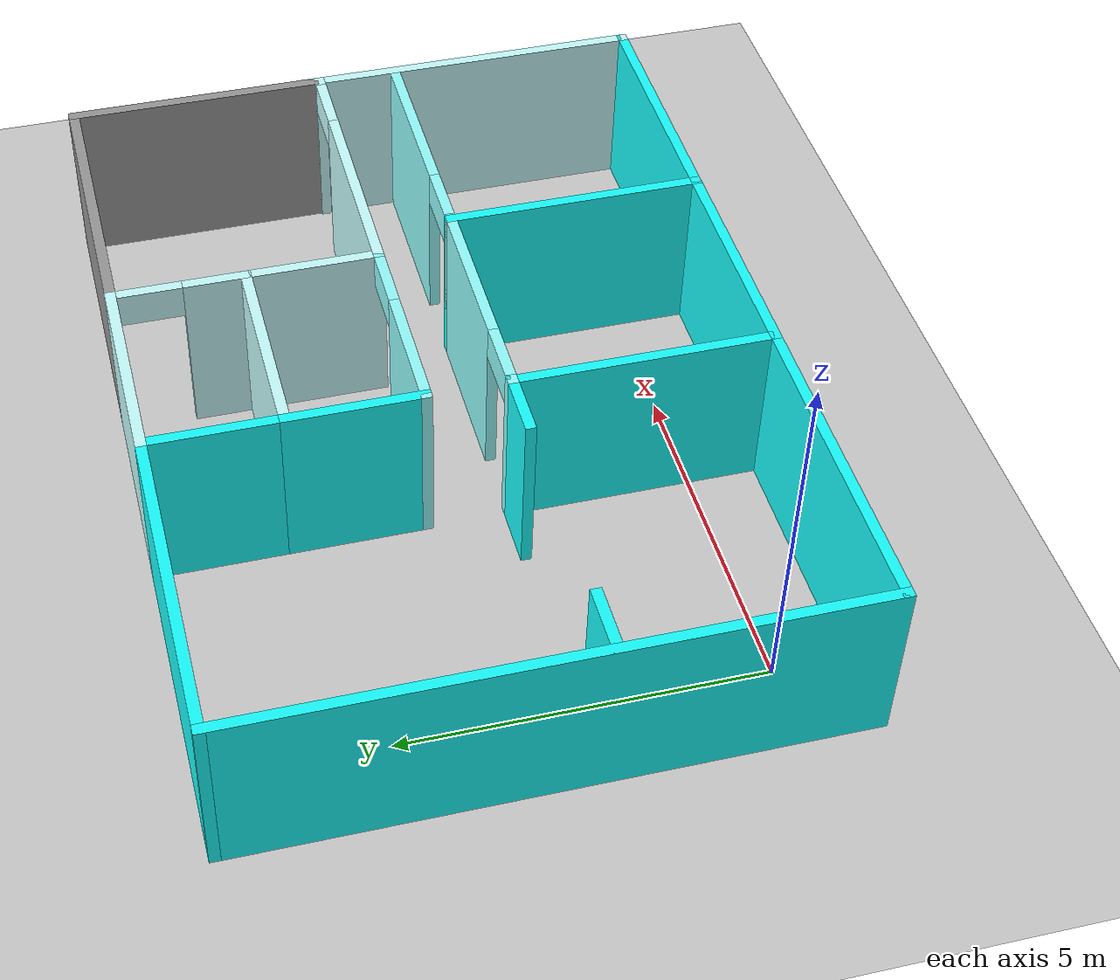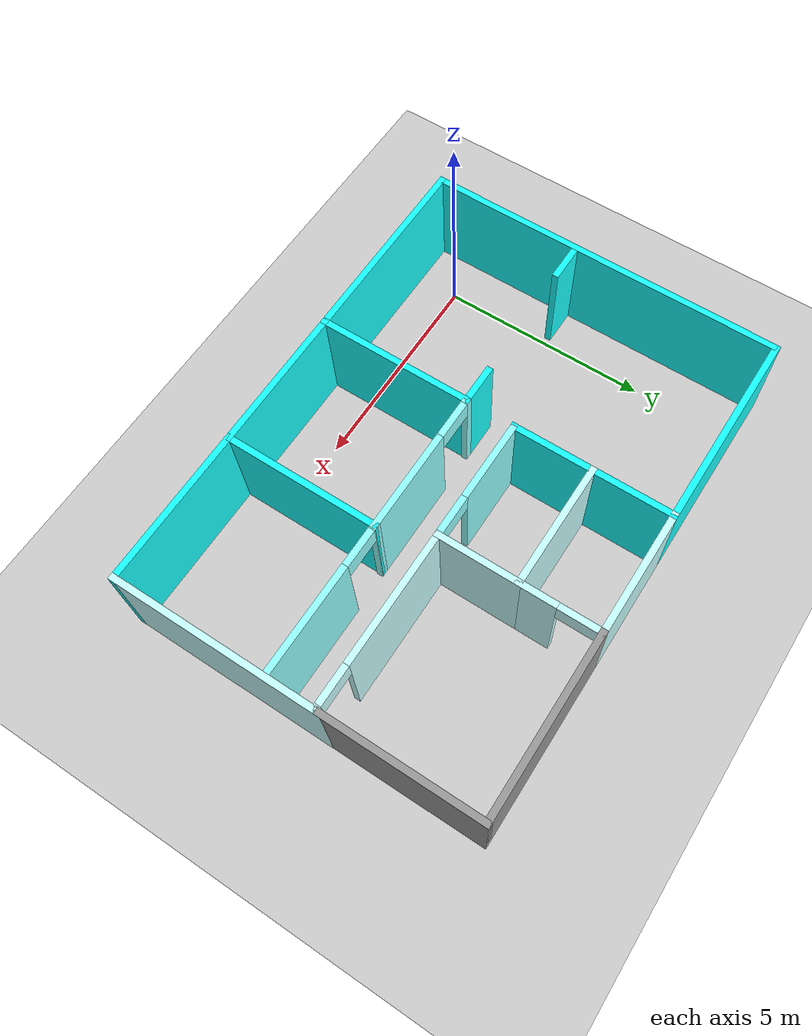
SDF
<sdf version="1.6">
 <world name="default">
  <light name="sun" type="directional">
   <pose>0 0 10 0 -0 0</pose>
   <diffuse>0.8 0.8 0.8 1</diffuse>
   <specular>0.2 0.2 0.2 1</specular>
   <attenuation>
    <range>1000</range>
    <constant>0.9</constant>
    <linear>0.01</linear>
    <quadratic>0.001</quadratic>
   </attenuation>
   <direction>-0.5 0.1 -0.9</direction>
  </light>
  <model name="ground_plane">
   <static>1</static>
   <link name="link">
    <collision name="collision">
     <geometry><plane><normal>0 0 1</normal><size>100 100</size></plane></geometry>
     <surface>
      <contact><collide_bitmask>65535</collide_bitmask></contact>
      <friction><ode><mu>100</mu><mu2>50</mu2></ode></friction>
     </surface>
    </collision>
    <visual name="visual">
     <cast_shadows>0</cast_shadows>
     <geometry><plane><normal>0 0 1</normal><size>100 100</size></plane></geometry>
     <material>
      <script><uri>file://media/materials/scripts/gazebo.material</uri><name>Gazebo/Grey</name></script>
     </material>
    </visual>
   </link>
  </model>
  <gravity>0 0 -9.8</gravity>
  <magnetic_field>6e-06 2.3e-05 -4.2e-05</magnetic_field>
  <atmosphere type="adiabatic"/>
  <physics name="default_physics" default="0" type="ode">
   <max_step_size>0.001</max_step_size>
   <real_time_factor>1</real_time_factor>
   <real_time_update_rate>1000</real_time_update_rate>
  </physics>
  <scene><ambient>0.4 0.4 0.4 1</ambient><background>0.7 0.7 0.7 1</background><shadows>1</shadows></scene>
  <audio><device>default</device></audio>
  <spherical_coordinates>
   <surface_model>EARTH_WGS84</surface_model>
   <latitude_deg>0</latitude_deg>
   <longitude_deg>0</longitude_deg>
   <elevation>0</elevation>
   <heading_deg>0</heading_deg>
  </spherical_coordinates>
  <model name="blue_model">
   <pose>4.70028 3.18778 0 0 -0 0</pose>
   <link name="Wall_0">
    <collision name="Wall_0_Collision">
     <geometry><box><size>4.75 0.15 2.5</size></box></geometry>
     <pose>0 0 1.25 0 -0 0</pose>
    </collision>
    <visual name="Wall_0_Visual">
     <pose>0 0 1.25 0 -0 0</pose>
     <geometry><box><size>4.75 0.15 2.5</size></box></geometry>
     <material>
      <script><uri>file://media/materials/scripts/gazebo.material</uri><name>Gazebo/Grey</name></script>
      <ambient>0.0980392 1 1 1</ambient>
     </material>
     <meta><layer>0</layer></meta>
    </visual>
    <pose>-3.475 4.225 0 0 -0 0</pose>
   </link>
   <link name="Wall_1">
    <collision name="Wall_1_Collision">
     <geometry><box><size>3 0.15 2.5</size></box></geometry>
     <pose>0 0 1.25 0 -0 0</pose>
    </collision>
    <visual name="Wall_1_Visual">
     <pose>0 0 1.25 0 -0 0</pose>
     <geometry><box><size>3 0.15 2.5</size></box></geometry>
     <material>
      <script><uri>file://media/materials/scripts/gazebo.material</uri><name>Gazebo/Grey</name></script>
      <ambient>0.784314 1 1 1</ambient>
     </material>
     <meta><layer>0</layer></meta>
    </visual>
    <pose>0.25 4.225 0 0 -0 0</pose>
   </link>
   <link name="Wall_10">
    <pose>0.5 -0.625 0 0 -0 3.14159</pose>
    <visual name="Wall_10_Visual_0">
     <pose>-0.5326 0 1.25 0 -0 0</pose>
     <geometry><box><size>2.4348 0.15 2.5</size></box></geometry>
     <material>
      <script><uri>file://media/materials/scripts/gazebo.material</uri><name>Gazebo/Grey</name></script>
      <ambient>0.588235 1 1 1</ambient>
     </material>
     <meta><layer>0</layer></meta>
    </visual>
    <collision name="Wall_10_Collision_0">
     <geometry><box><size>2.4348 0.15 2.5</size></box></geometry>
     <pose>-0.5326 0 1.25 0 -0 0</pose>
    </collision>
    <visual name="Wall_10_Visual_1">
     <pose>1.6674 0 1.25 0 -0 0</pose>
     <geometry><box><size>0.1652 0.15 2.5</size></box></geometry>
     <material>
      <script><uri>file://media/materials/scripts/gazebo.material</uri><name>Gazebo/Grey</name></script>
      <ambient>0.588235 1 1 1</ambient>
     </material>
     <meta><layer>0</layer></meta>
    </visual>
    <collision name="Wall_10_Collision_1">
     <geometry><box><size>0.1652 0.15 2.5</size></box></geometry>
     <pose>1.6674 0 1.25 0 -0 0</pose>
    </collision>
    <visual name="Wall_10_Visual_2">
     <pose>1.1348 0 2.25 0 -0 0</pose>
     <geometry><box><size>0.9 0.15 0.5</size></box></geometry>
     <material>
      <script><uri>file://media/materials/scripts/gazebo.material</uri><name>Gazebo/Grey</name></script>
      <ambient>0.588235 1 1 1</ambient>
     </material>
     <meta><layer>0</layer></meta>
    </visual>
    <collision name="Wall_10_Collision_2">
     <geometry><box><size>0.9 0.15 0.5</size></box></geometry>
     <pose>1.1348 0 2.25 0 -0 0</pose>
    </collision>
   </link>
   <link name="Wall_11">
    <collision name="Wall_11_Collision">
     <geometry><box><size>3.75 0.15 2.5</size></box></geometry>
     <pose>0 0 1.25 0 -0 0</pose>
    </collision>
    <visual name="Wall_11_Visual">
     <pose>0 0 1.25 0 -0 0</pose>
     <geometry><box><size>3.75 0.15 2.5</size></box></geometry>
     <material>
      <script><uri>file://media/materials/scripts/gazebo.material</uri><name>Gazebo/Grey</name></script>
      <ambient>0.0980392 1 1 1</ambient>
     </material>
     <meta><layer>0</layer></meta>
    </visual>
    <pose>-1.175 -2.425 0 0 -0 -1.5708</pose>
   </link>
   <link name="Wall_12">
    <collision name="Wall_12_Collision">
     <geometry><box><size>3.5 0.15 2.5</size></box></geometry>
     <pose>0 0 1.25 0 -0 0</pose>
    </collision>
    <visual name="Wall_12_Visual">
     <pose>0 0 1.25 0 -0 0</pose>
     <geometry><box><size>3.5 0.15 2.5</size></box></geometry>
     <material>
      <script><uri>file://media/materials/scripts/gazebo.material</uri><name>Gazebo/Grey</name></script>
      <ambient>0.0980392 1 1 1</ambient>
     </material>
     <meta><layer>0</layer></meta>
    </visual>
    <pose>0.5 -4.225 0 0 -0 0</pose>
   </link>
   <link name="Wall_16">
    <pose>1.675 3.3 0 0 -0 -1.5708</pose>
    <visual name="Wall_16_Visual_0">
     <pose>-0.924743 0 1.25 0 -0 0</pose>
     <geometry><box><size>0.150513 0.15 2.5</size></box></geometry>
     <material>
      <script><uri>file://media/materials/scripts/gazebo.material</uri><name>Gazebo/Grey</name></script>
      <ambient>0.784314 1 1 1</ambient>
     </material>
     <meta><layer>0</layer></meta>
    </visual>
    <collision name="Wall_16_Collision_0">
     <geometry><box><size>0.150513 0.15 2.5</size></box></geometry>
     <pose>-0.924743 0 1.25 0 -0 0</pose>
    </collision>
    <visual name="Wall_16_Visual_1">
     <pose>0.525257 0 1.25 0 -0 0</pose>
     <geometry><box><size>0.949487 0.15 2.5</size></box></geometry>
     <material>
      <script><uri>file://media/materials/scripts/gazebo.material</uri><name>Gazebo/Grey</name></script>
      <ambient>0.784314 1 1 1</ambient>
     </material>
     <meta><layer>0</layer></meta>
    </visual>
    <collision name="Wall_16_Collision_1">
     <geometry><box><size>0.949487 0.15 2.5</size></box></geometry>
     <pose>0.525257 0 1.25 0 -0 0</pose>
    </collision>
    <visual name="Wall_16_Visual_2">
     <pose>-0.399487 0 2.25 0 -0 0</pose>
     <geometry><box><size>0.9 0.15 0.5</size></box></geometry>
     <material>
      <script><uri>file://media/materials/scripts/gazebo.material</uri><name>Gazebo/Grey</name></script>
      <ambient>0.784314 1 1 1</ambient>
     </material>
     <meta><layer>0</layer></meta>
    </visual>
    <collision name="Wall_16_Collision_2">
     <geometry><box><size>0.9 0.15 0.5</size></box></geometry>
     <pose>-0.399487 0 2.25 0 -0 0</pose>
    </collision>
   </link>
   <link name="Wall_17">
    <collision name="Wall_17_Collision">
     <geometry><box><size>2 0.15 2.5</size></box></geometry>
     <pose>0 0 1.25 0 -0 0</pose>
    </collision>
    <visual name="Wall_17_Visual">
     <pose>0 0 1.25 0 -0 0</pose>
     <geometry><box><size>2 0.15 2.5</size></box></geometry>
     <material>
      <script><uri>file://media/materials/scripts/gazebo.material</uri><name>Gazebo/Grey</name></script>
      <ambient>0.784314 1 1 1</ambient>
     </material>
     <meta><layer>0</layer></meta>
    </visual>
    <pose>1.675 1.45 0 0 -0 -1.5708</pose>
   </link>
   <link name="Wall_2">
    <collision name="Wall_2_Collision">
     <geometry><box><size>4.25 0.15 2.5</size></box></geometry>
     <pose>0 0 1.25 0 -0 0</pose>
    </collision>
    <visual name="Wall_2_Visual">
     <pose>0 0 1.25 0 -0 0</pose>
     <geometry><box><size>4.25 0.15 2.5</size></box></geometry>
     <material>
      <script><uri>file://media/materials/scripts/gazebo.material</uri><name>Gazebo/Grey</name></script>
      <ambient>1 1 1 1</ambient>
     </material>
     <meta><layer>0</layer></meta>
    </visual>
    <pose>3.725 4.225 0 0 -0 0</pose>
   </link>
   <link name="Wall_20">
    <pose>0.25 0.525 0 0 -0 3.14159</pose>
    <visual name="Wall_20_Visual_0">
     <pose>-1.42623 0 1.25 0 -0 0</pose>
     <geometry><box><size>0.147542 0.15 2.5</size></box></geometry>
     <material>
      <script><uri>file://media/materials/scripts/gazebo.material</uri><name>Gazebo/Grey</name></script>
      <ambient>0.588235 1 1 1</ambient>
     </material>
     <meta><layer>0</layer></meta>
    </visual>
    <collision name="Wall_20_Collision_0">
     <geometry><box><size>0.147542 0.15 2.5</size></box></geometry>
     <pose>-1.42623 0 1.25 0 -0 0</pose>
    </collision>
    <visual name="Wall_20_Visual_1">
     <pose>0.523771 0 1.25 0 -0 0</pose>
     <geometry><box><size>1.95246 0.15 2.5</size></box></geometry>
     <material>
      <script><uri>file://media/materials/scripts/gazebo.material</uri><name>Gazebo/Grey</name></script>
      <ambient>0.588235 1 1 1</ambient>
     </material>
     <meta><layer>0</layer></meta>
    </visual>
    <collision name="Wall_20_Collision_1">
     <geometry><box><size>1.95246 0.15 2.5</size></box></geometry>
     <pose>0.523771 0 1.25 0 -0 0</pose>
    </collision>
    <visual name="Wall_20_Visual_2">
     <pose>-0.902458 0 2.25 0 -0 0</pose>
     <geometry><box><size>0.9 0.15 0.5</size></box></geometry>
     <material>
      <script><uri>file://media/materials/scripts/gazebo.material</uri><name>Gazebo/Grey</name></script>
      <ambient>0.588235 1 1 1</ambient>
     </material>
     <meta><layer>0</layer></meta>
    </visual>
    <collision name="Wall_20_Collision_2">
     <geometry><box><size>0.9 0.15 0.5</size></box></geometry>
     <pose>-0.902458 0 2.25 0 -0 0</pose>
    </collision>
   </link>
   <link name="Wall_22">
    <pose>3.725 0.525 0 0 -0 0</pose>
    <visual name="Wall_22_Visual_0">
     <pose>-0.539263 0 1.25 0 -0 0</pose>
     <geometry><box><size>3.17147 0.15 2.5</size></box></geometry>
     <material>
      <script><uri>file://media/materials/scripts/gazebo.material</uri><name>Gazebo/Grey</name></script>
      <ambient>0.784314 1 1 1</ambient>
     </material>
     <meta><layer>0</layer></meta>
    </visual>
    <collision name="Wall_22_Collision_0">
     <geometry><box><size>3.17147 0.15 2.5</size></box></geometry>
     <pose>-0.539263 0 1.25 0 -0 0</pose>
    </collision>
    <visual name="Wall_22_Visual_1">
     <pose>2.03574 0 1.25 0 -0 0</pose>
     <geometry><box><size>0.178527 0.15 2.5</size></box></geometry>
     <material>
      <script><uri>file://media/materials/scripts/gazebo.material</uri><name>Gazebo/Grey</name></script>
      <ambient>0.784314 1 1 1</ambient>
     </material>
     <meta><layer>0</layer></meta>
    </visual>
    <collision name="Wall_22_Collision_1">
     <geometry><box><size>0.178527 0.15 2.5</size></box></geometry>
     <pose>2.03574 0 1.25 0 -0 0</pose>
    </collision>
    <visual name="Wall_22_Visual_2">
     <pose>1.49647 0 2.25 0 -0 0</pose>
     <geometry><box><size>0.9 0.15 0.5</size></box></geometry>
     <material>
      <script><uri>file://media/materials/scripts/gazebo.material</uri><name>Gazebo/Grey</name></script>
      <ambient>0.784314 1 1 1</ambient>
     </material>
     <meta><layer>0</layer></meta>
    </visual>
    <collision name="Wall_22_Collision_2">
     <geometry><box><size>0.9 0.15 0.5</size></box></geometry>
     <pose>1.49647 0 2.25 0 -0 0</pose>
    </collision>
   </link>
   <link name="Wall_24">
    <collision name="Wall_24_Collision">
     <geometry><box><size>3 0.15 2.5</size></box></geometry>
     <pose>0 0 1.25 0 -0 0</pose>
    </collision>
    <visual name="Wall_24_Visual">
     <pose>0 0 1.25 0 -0 0</pose>
     <geometry><box><size>3 0.15 2.5</size></box></geometry>
     <material>
      <script><uri>file://media/materials/scripts/gazebo.material</uri><name>Gazebo/Grey</name></script>
      <ambient>0.784314 1 1 1</ambient>
     </material>
     <meta><layer>0</layer></meta>
    </visual>
    <pose>0.25 2.375 0 0 -0 3.14159</pose>
   </link>
   <link name="Wall_26">
    <collision name="Wall_26_Collision">
     <geometry><box><size>4.75 0.15 2.5</size></box></geometry>
     <pose>0 0 1.25 0 -0 0</pose>
    </collision>
    <visual name="Wall_26_Visual">
     <pose>0 0 1.25 0 -0 0</pose>
     <geometry><box><size>4.75 0.15 2.5</size></box></geometry>
     <material>
      <script><uri>file://media/materials/scripts/gazebo.material</uri><name>Gazebo/Grey</name></script>
      <ambient>0.0980392 1 1 1</ambient>
     </material>
     <meta><layer>0</layer></meta>
    </visual>
    <pose>-3.475 -4.225 0 0 -0 3.14159</pose>
   </link>
   <link name="Wall_28">
    <collision name="Wall_28_Collision">
     <geometry><box><size>8.6 0.15 2.5</size></box></geometry>
     <pose>0 0 1.25 0 -0 0</pose>
    </collision>
    <visual name="Wall_28_Visual">
     <pose>0 0 1.25 0 -0 0</pose>
     <geometry><box><size>8.6 0.15 2.5</size></box></geometry>
     <material>
      <script><uri>file://media/materials/scripts/gazebo.material</uri><name>Gazebo/Grey</name></script>
      <ambient>0.0980392 1 1 1</ambient>
     </material>
     <meta><layer>0</layer></meta>
    </visual>
    <pose>-5.775 0 0 0 -0 -1.5708</pose>
   </link>
   <link name="Wall_3">
    <collision name="Wall_3_Collision">
     <geometry><box><size>3.75 0.15 2.5</size></box></geometry>
     <pose>0 0 1.25 0 -0 0</pose>
    </collision>
    <visual name="Wall_3_Visual">
     <pose>0 0 1.25 0 -0 0</pose>
     <geometry><box><size>3.75 0.15 2.5</size></box></geometry>
     <material>
      <script><uri>file://media/materials/scripts/gazebo.material</uri><name>Gazebo/Grey</name></script>
      <ambient>1 1 1 1</ambient>
     </material>
     <meta><layer>0</layer></meta>
    </visual>
    <pose>5.775 2.425 0 0 -0 -1.5708</pose>
   </link>
   <link name="Wall_30">
    <collision name="Wall_30_Collision">
     <geometry><box><size>2 0.15 2.5</size></box></geometry>
     <pose>0 0 1.25 0 -0 0</pose>
    </collision>
    <visual name="Wall_30_Visual">
     <pose>0 0 1.25 0 -0 0</pose>
     <geometry><box><size>2 0.15 2.5</size></box></geometry>
     <material>
      <script><uri>file://media/materials/scripts/gazebo.material</uri><name>Gazebo/Grey</name></script>
      <ambient>0.0980392 1 1 1</ambient>
     </material>
     <meta><layer>0</layer></meta>
    </visual>
    <pose>-1.175 1.45 0 0 -0 1.5708</pose>
   </link>
   <link name="Wall_31">
    <collision name="Wall_31_Collision">
     <geometry><box><size>2 0.15 2.5</size></box></geometry>
     <pose>0 0 1.25 0 -0 0</pose>
    </collision>
    <visual name="Wall_31_Visual">
     <pose>0 0 1.25 0 -0 0</pose>
     <geometry><box><size>2 0.15 2.5</size></box></geometry>
     <material>
      <script><uri>file://media/materials/scripts/gazebo.material</uri><name>Gazebo/Grey</name></script>
      <ambient>0.0980392 1 1 1</ambient>
     </material>
     <meta><layer>0</layer></meta>
    </visual>
    <pose>-1.175 3.3 0 0 -0 1.5708</pose>
   </link>
   <link name="Wall_33">
    <collision name="Wall_33_Collision">
     <geometry><box><size>1 0.15 2.5</size></box></geometry>
     <pose>0 0 1.25 0 -0 0</pose>
    </collision>
    <visual name="Wall_33_Visual">
     <pose>0 0 1.25 0 -0 0</pose>
     <geometry><box><size>1 0.15 2.5</size></box></geometry>
     <material>
      <script><uri>file://media/materials/scripts/gazebo.material</uri><name>Gazebo/Grey</name></script>
      <ambient>0.0980392 1 1 1</ambient>
     </material>
     <meta><layer>0</layer></meta>
    </visual>
    <pose>-1.6 -0.625 0 0 -0 3.14159</pose>
   </link>
   <link name="Wall_35">
    <collision name="Wall_35_Collision">
     <geometry><box><size>1 0.15 2.5</size></box></geometry>
     <pose>0 0 1.25 0 -0 0</pose>
    </collision>
    <visual name="Wall_35_Visual">
     <pose>0 0 1.25 0 -0 0</pose>
     <geometry><box><size>1 0.15 2.5</size></box></geometry>
     <material>
      <script><uri>file://media/materials/scripts/gazebo.material</uri><name>Gazebo/Grey</name></script>
      <ambient>0.0980392 1 1 1</ambient>
     </material>
     <meta><layer>0</layer></meta>
    </visual>
    <pose>-5.34675 -0.663163 0 0 -0 0</pose>
   </link>
   <link name="Wall_5">
    <collision name="Wall_5_Collision">
     <geometry><box><size>5 0.15 2.5</size></box></geometry>
     <pose>0 0 1.25 0 -0 0</pose>
    </collision>
    <visual name="Wall_5_Visual">
     <pose>0 0 1.25 0 -0 0</pose>
     <geometry><box><size>5 0.15 2.5</size></box></geometry>
     <material>
      <script><uri>file://media/materials/scripts/gazebo.material</uri><name>Gazebo/Grey</name></script>
      <ambient>0.784314 1 1 1</ambient>
     </material>
     <meta><layer>0</layer></meta>
    </visual>
    <pose>5.775 -1.8 0 0 -0 -1.5708</pose>
   </link>
   <link name="Wall_6">
    <collision name="Wall_6_Collision">
     <geometry><box><size>3.75 0.15 2.5</size></box></geometry>
     <pose>0 0 1.25 0 -0 0</pose>
    </collision>
    <visual name="Wall_6_Visual">
     <pose>0 0 1.25 0 -0 0</pose>
     <geometry><box><size>3.75 0.15 2.5</size></box></geometry>
     <material>
      <script><uri>file://media/materials/scripts/gazebo.material</uri><name>Gazebo/Grey</name></script>
      <ambient>0.0980392 1 1 1</ambient>
     </material>
     <meta><layer>0</layer></meta>
    </visual>
    <pose>3.975 -4.225 0 0 -0 3.14159</pose>
   </link>
   <link name="Wall_7">
    <collision name="Wall_7_Collision">
     <geometry><box><size>3.75 0.15 2.5</size></box></geometry>
     <pose>0 0 1.25 0 -0 0</pose>
    </collision>
    <visual name="Wall_7_Visual">
     <pose>0 0 1.25 0 -0 0</pose>
     <geometry><box><size>3.75 0.15 2.5</size></box></geometry>
     <material>
      <script><uri>file://media/materials/scripts/gazebo.material</uri><name>Gazebo/Grey</name></script>
      <ambient>0.0980392 1 1 1</ambient>
     </material>
     <meta><layer>0</layer></meta>
    </visual>
    <pose>2.175 -2.425 0 0 -0 1.5708</pose>
   </link>
   <link name="Wall_8">
    <pose>3.975 -0.625 0 0 -0 0</pose>
    <visual name="Wall_8_Visual_0">
     <pose>-1.78622 0 1.25 0 -0 0</pose>
     <geometry><box><size>0.177565 0.15 2.5</size></box></geometry>
     <material>
      <script><uri>file://media/materials/scripts/gazebo.material</uri><name>Gazebo/Grey</name></script>
      <ambient>0.588235 1 1 1</ambient>
     </material>
     <meta><layer>0</layer></meta>
    </visual>
    <collision name="Wall_8_Collision_0">
     <geometry><box><size>0.177565 0.15 2.5</size></box></geometry>
     <pose>-1.78622 0 1.25 0 -0 0</pose>
    </collision>
    <visual name="Wall_8_Visual_1">
     <pose>0.538783 0 1.25 0 -0 0</pose>
     <geometry><box><size>2.67244 0.15 2.5</size></box></geometry>
     <material>
      <script><uri>file://media/materials/scripts/gazebo.material</uri><name>Gazebo/Grey</name></script>
      <ambient>0.588235 1 1 1</ambient>
     </material>
     <meta><layer>0</layer></meta>
    </visual>
    <collision name="Wall_8_Collision_1">
     <geometry><box><size>2.67244 0.15 2.5</size></box></geometry>
     <pose>0.538783 0 1.25 0 -0 0</pose>
    </collision>
    <visual name="Wall_8_Visual_2">
     <pose>-1.24744 0 2.25 0 -0 0</pose>
     <geometry><box><size>0.9 0.15 0.5</size></box></geometry>
     <material>
      <script><uri>file://media/materials/scripts/gazebo.material</uri><name>Gazebo/Grey</name></script>
      <ambient>0.588235 1 1 1</ambient>
     </material>
     <meta><layer>0</layer></meta>
    </visual>
    <collision name="Wall_8_Collision_2">
     <geometry><box><size>0.9 0.15 0.5</size></box></geometry>
     <pose>-1.24744 0 2.25 0 -0 0</pose>
    </collision>
   </link>
   <static>1</static>
  </model>
 </world>
</sdf>
